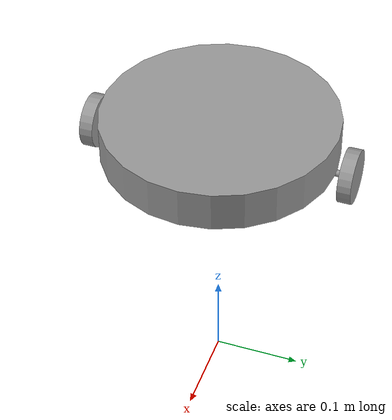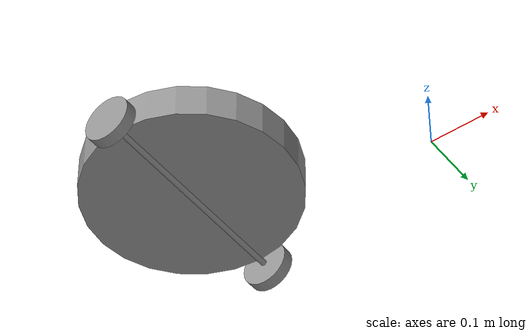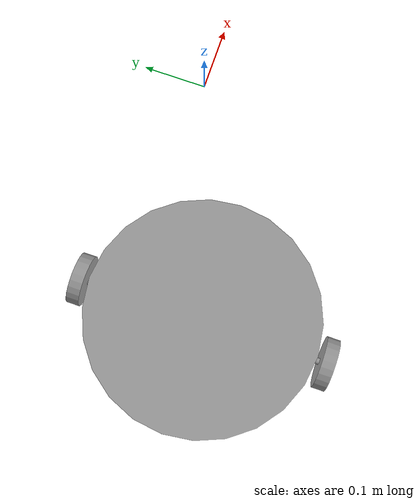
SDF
<?xml version='1.0'?>
<sdf version='1.6'>
  <model name='vacuum_robot'>
    <link name='link_0_0'>
      <pose frame=''>-0.357654 -0.121448 0.03 -6e-06 -1e-06 0.000206</pose>
      <inertial>
        <mass>1</mass>
        <inertia>
          <ixx>0.145833</ixx>
          <ixy>0</ixy>
          <ixz>0</ixz>
          <iyy>0.145833</iyy>
          <iyz>0</iyz>
          <izz>0.125</izz>
        </inertia>
        <pose frame=''>0 0 0 0 -0 0</pose>
      </inertial>
      <gravity>1</gravity>
      <self_collide>0</self_collide>
      <kinematic>0</kinematic>
      <visual name='visual'>
        <pose frame=''>0 0 0 0 -0 0</pose>
        <geometry>
          <cylinder>
            <radius>0.175</radius>
            <length>0.06</length>
          </cylinder>
        </geometry>
        <material>
          <lighting>1</lighting>
          <script>
            <uri>file://media/materials/scripts/gazebo.material</uri>
            <name>Gazebo/Grey</name>
          </script>
          <shader type='pixel'>
            <normal_map>__default__</normal_map>
          </shader>
          <ambient>0.3 0.3 0.3 1</ambient>
          <diffuse>0.7 0.7 0.7 1</diffuse>
          <specular>0.01 0.01 0.01 1</specular>
          <emissive>0 0 0 1</emissive>
        </material>
        <transparency>0</transparency>
        <cast_shadows>1</cast_shadows>
      </visual>
      <collision name='collision'>
        <laser_retro>0</laser_retro>
        <max_contacts>10</max_contacts>
        <pose frame=''>0 0 0 0 -0 0</pose>
        <geometry>
          <cylinder>
            <radius>0.175</radius>
            <length>0.06</length>
          </cylinder>
        </geometry>
        <surface>
          <friction>
            <ode>
              <mu>1</mu>
              <mu2>1</mu2>
              <fdir1>0 0 0</fdir1>
              <slip1>0</slip1>
              <slip2>0</slip2>
            </ode>
            <torsional>
              <coefficient>1</coefficient>
              <patch_radius>0</patch_radius>
              <surface_radius>0</surface_radius>
              <use_patch_radius>1</use_patch_radius>
              <ode>
                <slip>0</slip>
              </ode>
            </torsional>
          </friction>
          <bounce>
            <restitution_coefficient>0</restitution_coefficient>
            <threshold>1e+06</threshold>
          </bounce>
          <contact>
            <collide_without_contact>0</collide_without_contact>
            <collide_without_contact_bitmask>1</collide_without_contact_bitmask>
            <collide_bitmask>1</collide_bitmask>
            <ode>
              <soft_cfm>0</soft_cfm>
              <soft_erp>0.2</soft_erp>
              <kp>1e+13</kp>
              <kd>1</kd>
              <max_vel>0.01</max_vel>
              <min_depth>0</min_depth>
            </ode>
            <bullet>
              <split_impulse>1</split_impulse>
              <split_impulse_penetration_threshold>-0.01</split_impulse_penetration_threshold>
              <soft_cfm>0</soft_cfm>
              <soft_erp>0.2</soft_erp>
              <kp>1e+13</kp>
              <kd>1</kd>
            </bullet>
          </contact>
        </surface>
      </collision>
    </link>
    <link name='link_1'>
      <pose frame=''>-0.357614 -0.316577 0.000459 1.57 -1e-06 0.000206</pose>
      <inertial>
        <mass>1</mass>
        <inertia>
          <ixx>0.145833</ixx>
          <ixy>0</ixy>
          <ixz>0</ixz>
          <iyy>0.145833</iyy>
          <iyz>0</iyz>
          <izz>0.125</izz>
        </inertia>
        <pose frame=''>0 0 0 0 -0 0</pose>
      </inertial>
      <gravity>1</gravity>
      <self_collide>0</self_collide>
      <kinematic>0</kinematic>
      <visual name='visual'>
        <pose frame=''>0 0 0 0 -0 0</pose>
        <geometry>
          <cylinder>
            <radius>0.04</radius>
            <length>0.02</length>
          </cylinder>
        </geometry>
        <material>
          <lighting>1</lighting>
          <script>
            <uri>file://media/materials/scripts/gazebo.material</uri>
            <name>Gazebo/Grey</name>
          </script>
          <shader type='pixel'>
            <normal_map>__default__</normal_map>
          </shader>
          <ambient>0.3 0.3 0.3 1</ambient>
          <diffuse>0.7 0.7 0.7 1</diffuse>
          <specular>0.01 0.01 0.01 1</specular>
          <emissive>0 0 0 1</emissive>
        </material>
        <transparency>0</transparency>
        <cast_shadows>1</cast_shadows>
      </visual>
      <collision name='collision'>
        <laser_retro>0</laser_retro>
        <max_contacts>10</max_contacts>
        <pose frame=''>0 0 0 0 -0 0</pose>
        <geometry>
          <cylinder>
            <radius>0.04</radius>
            <length>0.02</length>
          </cylinder>
        </geometry>
        <surface>
          <friction>
            <ode>
              <mu>1</mu>
              <mu2>1</mu2>
              <fdir1>0 0 0</fdir1>
              <slip1>0</slip1>
              <slip2>0</slip2>
            </ode>
            <torsional>
              <coefficient>1</coefficient>
              <patch_radius>0</patch_radius>
              <surface_radius>0</surface_radius>
              <use_patch_radius>1</use_patch_radius>
              <ode>
                <slip>0</slip>
              </ode>
            </torsional>
          </friction>
          <bounce>
            <restitution_coefficient>0</restitution_coefficient>
            <threshold>1e+06</threshold>
          </bounce>
          <contact>
            <collide_without_contact>0</collide_without_contact>
            <collide_without_contact_bitmask>1</collide_without_contact_bitmask>
            <collide_bitmask>1</collide_bitmask>
            <ode>
              <soft_cfm>0</soft_cfm>
              <soft_erp>0.2</soft_erp>
              <kp>1e+13</kp>
              <kd>1</kd>
              <max_vel>0.01</max_vel>
              <min_depth>0</min_depth>
            </ode>
            <bullet>
              <split_impulse>1</split_impulse>
              <split_impulse_penetration_threshold>-0.01</split_impulse_penetration_threshold>
              <soft_cfm>0</soft_cfm>
              <soft_erp>0.2</soft_erp>
              <kp>1e+13</kp>
              <kd>1</kd>
            </bullet>
          </contact>
        </surface>
      </collision>
    </link>
    <link name='link_1_clone'>
      <pose frame=''>-0.357695 0.073703 0.000303 1.56999 -2e-06 0.000412</pose>
      <inertial>
        <mass>1</mass>
        <inertia>
          <ixx>0.145833</ixx>
          <ixy>0</ixy>
          <ixz>0</ixz>
          <iyy>0.145833</iyy>
          <iyz>0</iyz>
          <izz>0.125</izz>
        </inertia>
        <pose frame=''>0 0 0 0 -0 0</pose>
      </inertial>
      <self_collide>0</self_collide>
      <kinematic>0</kinematic>
      <visual name='visual'>
        <pose frame=''>0 0 0 0 -0 0</pose>
        <geometry>
          <cylinder>
            <radius>0.04</radius>
            <length>0.02</length>
          </cylinder>
        </geometry>
        <material>
          <lighting>1</lighting>
          <script>
            <uri>file://media/materials/scripts/gazebo.material</uri>
            <name>Gazebo/Grey</name>
          </script>
          <shader type='pixel'>
            <normal_map>__default__</normal_map>
          </shader>
          <ambient>0.3 0.3 0.3 1</ambient>
          <diffuse>0.7 0.7 0.7 1</diffuse>
          <specular>0.01 0.01 0.01 1</specular>
          <emissive>0 0 0 1</emissive>
        </material>
        <transparency>0</transparency>
        <cast_shadows>1</cast_shadows>
      </visual>
      <collision name='collision'>
        <laser_retro>0</laser_retro>
        <max_contacts>10</max_contacts>
        <pose frame=''>0 0 0 0 -0 0</pose>
        <geometry>
          <cylinder>
            <radius>0.04</radius>
            <length>0.02</length>
          </cylinder>
        </geometry>
        <surface>
          <friction>
            <ode>
              <mu>1</mu>
              <mu2>1</mu2>
              <fdir1>0 0 0</fdir1>
              <slip1>0</slip1>
              <slip2>0</slip2>
            </ode>
            <torsional>
              <coefficient>1</coefficient>
              <patch_radius>0</patch_radius>
              <surface_radius>0</surface_radius>
              <use_patch_radius>1</use_patch_radius>
              <ode>
                <slip>0</slip>
              </ode>
            </torsional>
          </friction>
          <bounce>
            <restitution_coefficient>0</restitution_coefficient>
            <threshold>1e+06</threshold>
          </bounce>
          <contact>
            <collide_without_contact>0</collide_without_contact>
            <collide_without_contact_bitmask>1</collide_without_contact_bitmask>
            <collide_bitmask>1</collide_bitmask>
            <ode>
              <soft_cfm>0</soft_cfm>
              <soft_erp>0.2</soft_erp>
              <kp>1e+13</kp>
              <kd>1</kd>
              <max_vel>0.01</max_vel>
              <min_depth>0</min_depth>
            </ode>
            <bullet>
              <split_impulse>1</split_impulse>
              <split_impulse_penetration_threshold>-0.01</split_impulse_penetration_threshold>
              <soft_cfm>0</soft_cfm>
              <soft_erp>0.2</soft_erp>
              <kp>1e+13</kp>
              <kd>1</kd>
            </bullet>
          </contact>
        </surface>
      </collision>
    </link>
    <link name='link_2'>
      <pose frame=''>-0.357654 -0.121448 0 1.57 -1e-06 0.000206</pose>
      <inertial>
        <mass>1</mass>
        <inertia>
          <ixx>0.145833</ixx>
          <ixy>0</ixy>
          <ixz>0</ixz>
          <iyy>0.145833</iyy>
          <iyz>0</iyz>
          <izz>0.125</izz>
        </inertia>
        <pose frame=''>0 0 0 0 -0 0</pose>
      </inertial>
      <gravity>1</gravity>
      <self_collide>0</self_collide>
      <kinematic>0</kinematic>
      <visual name='visual'>
        <pose frame=''>0 0 0 0 -0 0</pose>
        <geometry>
          <cylinder>
            <radius>0.005</radius>
            <length>0.37</length>
          </cylinder>
        </geometry>
        <material>
          <lighting>1</lighting>
          <script>
            <uri>file://media/materials/scripts/gazebo.material</uri>
            <name>Gazebo/Grey</name>
          </script>
          <shader type='pixel'>
            <normal_map>__default__</normal_map>
          </shader>
          <ambient>0.3 0.3 0.3 1</ambient>
          <diffuse>0.7 0.7 0.7 1</diffuse>
          <specular>0.01 0.01 0.01 1</specular>
          <emissive>0 0 0 1</emissive>
        </material>
        <transparency>0</transparency>
        <cast_shadows>1</cast_shadows>
      </visual>
      <collision name='collision'>
        <laser_retro>0</laser_retro>
        <max_contacts>10</max_contacts>
        <pose frame=''>0 0 0 0 -0 0</pose>
        <geometry>
          <cylinder>
            <radius>0.005</radius>
            <length>0.37</length>
          </cylinder>
        </geometry>
        <surface>
          <friction>
            <ode>
              <mu>1</mu>
              <mu2>1</mu2>
              <fdir1>0 0 0</fdir1>
              <slip1>0</slip1>
              <slip2>0</slip2>
            </ode>
            <torsional>
              <coefficient>1</coefficient>
              <patch_radius>0</patch_radius>
              <surface_radius>0</surface_radius>
              <use_patch_radius>1</use_patch_radius>
              <ode>
                <slip>0</slip>
              </ode>
            </torsional>
          </friction>
          <bounce>
            <restitution_coefficient>0</restitution_coefficient>
            <threshold>1e+06</threshold>
          </bounce>
          <contact>
            <collide_without_contact>0</collide_without_contact>
            <collide_without_contact_bitmask>1</collide_without_contact_bitmask>
            <collide_bitmask>1</collide_bitmask>
            <ode>
              <soft_cfm>0</soft_cfm>
              <soft_erp>0.2</soft_erp>
              <kp>1e+13</kp>
              <kd>1</kd>
              <max_vel>0.01</max_vel>
              <min_depth>0</min_depth>
            </ode>
            <bullet>
              <split_impulse>1</split_impulse>
              <split_impulse_penetration_threshold>-0.01</split_impulse_penetration_threshold>
              <soft_cfm>0</soft_cfm>
              <soft_erp>0.2</soft_erp>
              <kp>1e+13</kp>
              <kd>1</kd>
            </bullet>
          </contact>
        </surface>
      </collision>
    </link>
    <joint name='link_0_0_JOINT_0' type='fixed'>
      <parent>link_0_0</parent>
      <child>link_2</child>
      <pose frame=''>0 0 0 0 -0 0</pose>
      <physics>
        <ode>
          <limit>
            <cfm>0</cfm>
            <erp>0.2</erp>
          </limit>
          <suspension>
            <cfm>0</cfm>
            <erp>0.2</erp>
          </suspension>
        </ode>
      </physics>
    </joint>
    <joint name='link_2_JOINT_4' type='revolute'>
      <parent>link_2</parent>
      <child>link_1_clone</child>
      <pose frame=''>0 0 0 0 -0 0</pose>
      <axis>
        <xyz>0 0 1</xyz>
        <use_parent_model_frame>0</use_parent_model_frame>
        <limit>
          <lower>-1e+16</lower>
          <upper>1e+16</upper>
          <effort>-1</effort>
          <velocity>-1</velocity>
        </limit>
        <dynamics>
          <spring_reference>0</spring_reference>
          <spring_stiffness>0</spring_stiffness>
          <damping>0</damping>
          <friction>0</friction>
        </dynamics>
      </axis>
      <physics>
        <ode>
          <limit>
            <cfm>0</cfm>
            <erp>0.2</erp>
          </limit>
          <suspension>
            <cfm>0</cfm>
            <erp>0.2</erp>
          </suspension>
        </ode>
      </physics>
    </joint>
    <joint name='link_2_JOINT_5' type='revolute2'>
      <parent>link_2</parent>
      <child>link_1</child>
      <pose frame=''>0 0 0 0 -0 0</pose>
      <axis>
        <xyz>1 0 0</xyz>
        <use_parent_model_frame>0</use_parent_model_frame>
        <limit>
          <lower>-1.79769e+308</lower>
          <upper>1.79769e+308</upper>
          <effort>-1</effort>
          <velocity>-1</velocity>
        </limit>
        <dynamics>
          <spring_reference>0</spring_reference>
          <spring_stiffness>0</spring_stiffness>
          <damping>0</damping>
        </dynamics>
      </axis>
      <axis2>
        <xyz>0 1 0</xyz>
        <use_parent_model_frame>0</use_parent_model_frame>
        <dynamics>
          <spring_reference>0</spring_reference>
          <spring_stiffness>0</spring_stiffness>
          <damping>0</damping>
        </dynamics>
        <limit>
          <lower>-1.79769e+308</lower>
          <upper>1.79769e+308</upper>
          <effort>-1</effort>
          <velocity>-1</velocity>
        </limit>
      </axis2>
      <physics>
        <ode>
          <limit>
            <cfm>0</cfm>
            <erp>0.2</erp>
          </limit>
          <suspension>
            <cfm>0</cfm>
            <erp>0.2</erp>
          </suspension>
        </ode>
      </physics>
    </joint>
    <static>0</static>
    <allow_auto_disable>1</allow_auto_disable>
  </model>
</sdf>
